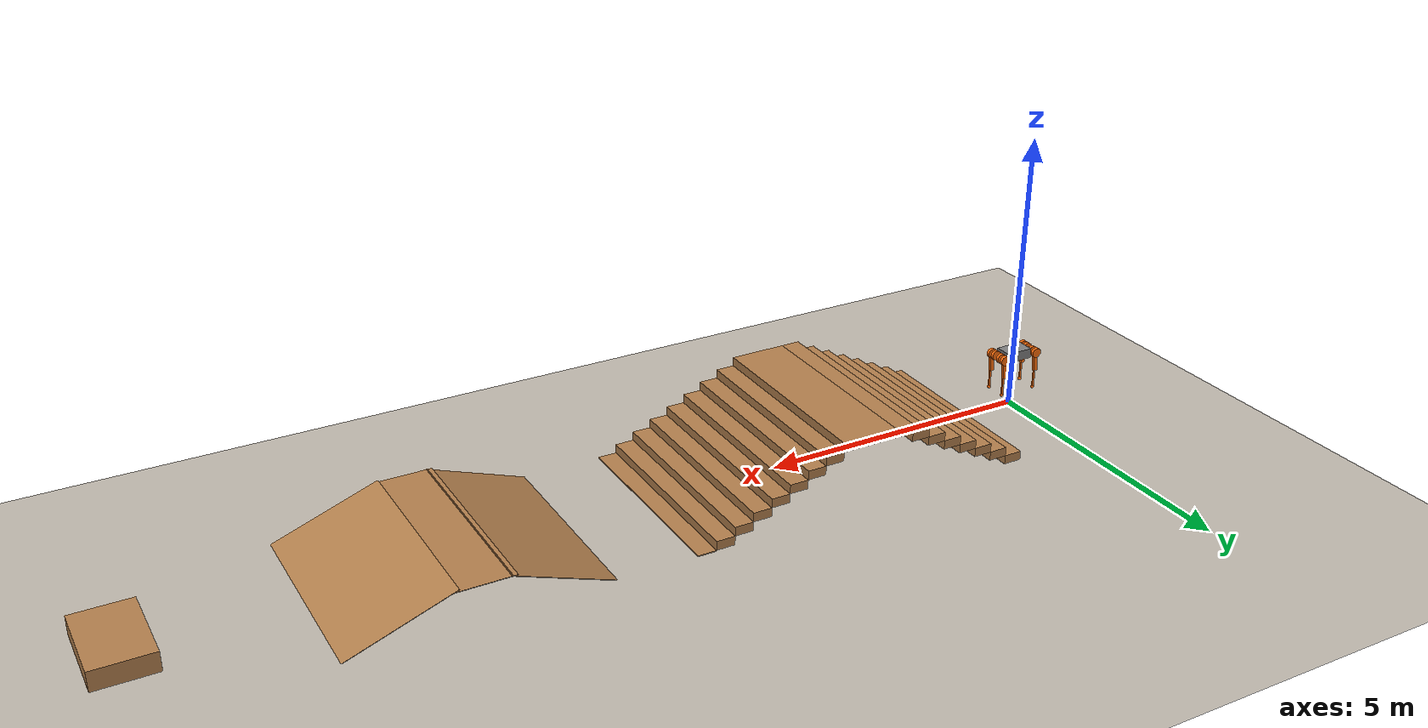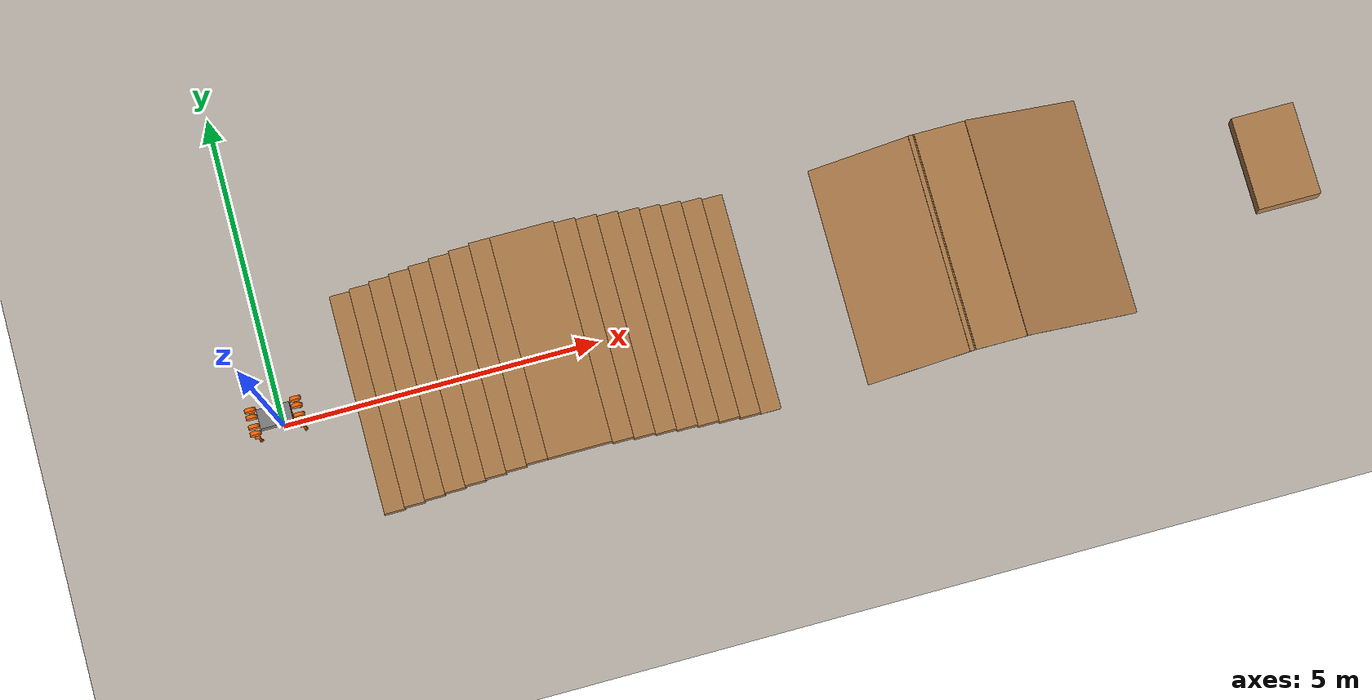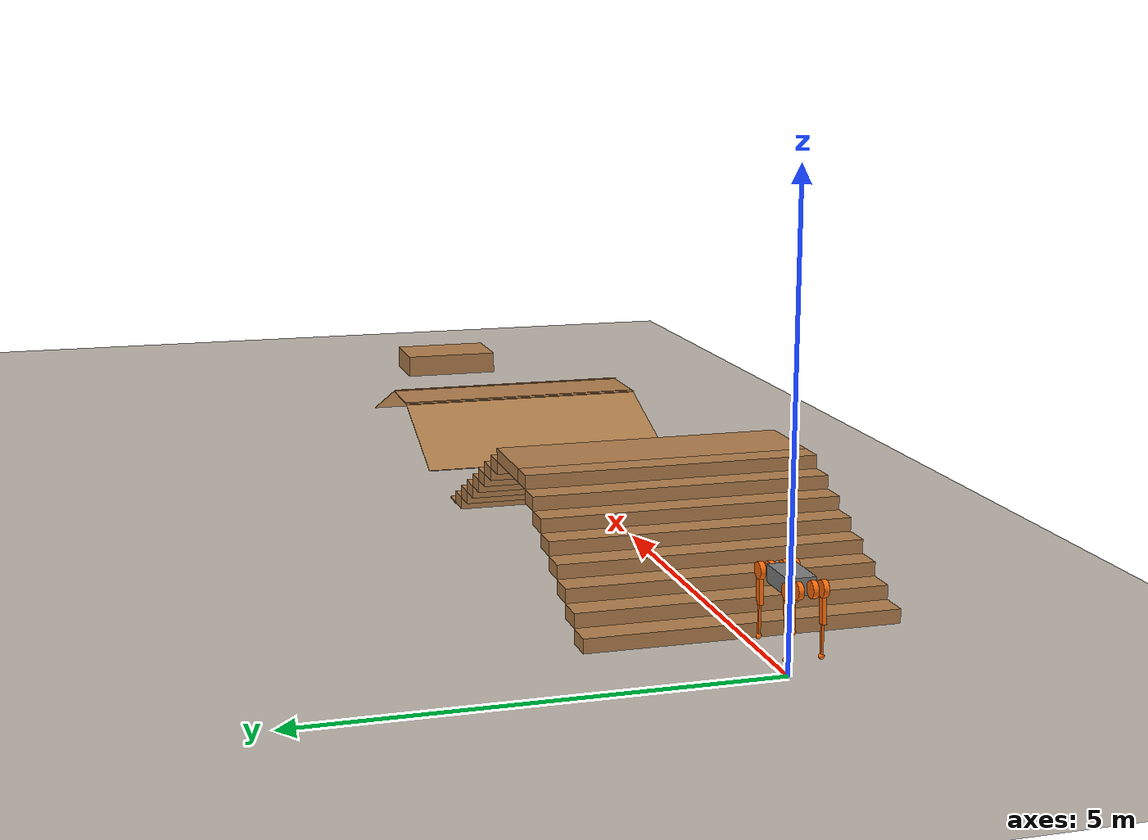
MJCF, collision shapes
<mujoco model="quad200 scene">
  <include file="quad200.xml" />

  <statistic center="1.0 0.7 1.0" extent="0.8" />

  <visual>

    <headlight diffuse="0.6 0.6 0.6" ambient="0.15 0.15 0.15" specular="0.9 0.9 0.9" />

    <rgba haze="0.0 0.0 0.0 1" />

    <global azimuth="-140" elevation="-20" />
  </visual>

  <asset>

    <texture type="skybox" builtin="flat" rgb1="1 1 1" rgb2="1 1 1" width="512" height="3072" />

    <texture name="floor_tex" type="2d" file="flooring2.png" />

    <material name="floor_mat" texture="floor_tex" texuniform="true" texrepeat="1 1" reflectance="0.2" />

    <texture type="2d" name="groundplane" builtin="checker" mark="edge" rgb1="0.2 0.3 0.4" rgb2="0.1 0.2 0.3" markrgb="0.8 0.8 0.8" width="300" height="300" />
    <material name="groundplane" texture="groundplane" texuniform="true" texrepeat="5 5" reflectance="0.2" />
  <texture name="wood_tex" type="2d" file="wood_texture.png" /><material name="wood" texture="wood_tex" texuniform="true" texrepeat="2 2" specular="0.3" shininess="0.1" reflectance="0.1" /></asset>

  <worldbody>
    <light pos="1 0 3.5" dir="0 0 -1" directional="true" />

    <geom name="floor" size="0 0 0.05" type="plane" material="floor_mat" />
  <geom pos="1.33 0.0 0.08" type="box" size="0.165 1.75 0.08" quat="1.0 0.0 0.0 0.0" material="wood" /><geom pos="1.6600000000000001 0.0 0.24" type="box" size="0.165 1.75 0.08" quat="1.0 0.0 0.0 0.0" material="wood" /><geom pos="1.99 0.0 0.4" type="box" size="0.165 1.75 0.08" quat="1.0 0.0 0.0 0.0" material="wood" /><geom pos="2.3200000000000003 0.0 0.56" type="box" size="0.165 1.75 0.08" quat="1.0 0.0 0.0 0.0" material="wood" /><geom pos="2.6500000000000004 0.0 0.7200000000000001" type="box" size="0.165 1.75 0.08" quat="1.0 0.0 0.0 0.0" material="wood" /><geom pos="2.9800000000000004 0.0 0.8800000000000001" type="box" size="0.165 1.75 0.08" quat="1.0 0.0 0.0 0.0" material="wood" /><geom pos="3.31 0.0 1.04" type="box" size="0.165 1.75 0.08" quat="1.0 0.0 0.0 0.0" material="wood" /><geom pos="3.64 0.0 1.2" type="box" size="0.165 1.75 0.08" quat="1.0 0.0 0.0 0.0" material="wood" /><geom pos="4.305 0.0 1.2" type="box" size="0.5 1.75 0.08" quat="1.0 0.0 0.0 0.0" material="wood" /><geom pos="4.970000000000001 0.0 1.04" type="box" size="0.165 1.75 0.08" quat="1.0 0.0 0.0 0.0" material="wood" /><geom pos="5.3 0.0 0.8799999999999999" type="box" size="0.165 1.75 0.08" quat="1.0 0.0 0.0 0.0" material="wood" /><geom pos="5.63 0.0 0.72" type="box" size="0.165 1.75 0.08" quat="1.0 0.0 0.0 0.0" material="wood" /><geom pos="5.96 0.0 0.5599999999999999" type="box" size="0.165 1.75 0.08" quat="1.0 0.0 0.0 0.0" material="wood" /><geom pos="6.29 0.0 0.3999999999999999" type="box" size="0.165 1.75 0.08" quat="1.0 0.0 0.0 0.0" material="wood" /><geom pos="6.62 0.0 0.24" type="box" size="0.165 1.75 0.08" quat="1.0 0.0 0.0 0.0" material="wood" /><geom pos="6.95 0.0 0.07999999999999985" type="box" size="0.165 1.75 0.08" quat="1.0 0.0 0.0 0.0" material="wood" /><geom pos="7.28 0.0 -0.08000000000000007" type="box" size="0.165 1.75 0.08" quat="1.0 0.0 0.0 0.0" material="wood" /><geom pos="9.679243225836387 0.0 0.305" type="box" size="0.8992432258363866 1.75 0.005" quat="0.984807753012208 0.0 -0.17364817766693033 0.0" material="wood" /><geom pos="10.928486451672775 0.0 0.605" type="box" size="0.5 1.75 0.005" quat="1.0 0.0 0.0 0.0" material="wood" /><geom pos="12.252729677509162 0.0 0.305" type="box" size="0.9742432258363867 1.75 0.005" quat="0.984807753012208 0.0 0.17364817766693033 0.0" material="wood" /><geom pos="15.876972903345548 0.0 0.17" type="box" size="0.5 0.75 0.17" quat="1.0 0.0 0.0 0.0" material="wood" /></worldbody>
</mujoco>

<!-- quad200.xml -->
<mujoco model="dog200">
    <compiler angle="radian" meshdir="meshes/"/>
    <asset>
        <mesh name="trunk" file="trunk.STL" />
        <mesh name="LF_HIP" file="LF_HIP.STL" />
        <mesh name="R_thigh" file="R_thigh.STL" />
        <mesh name="calf" file="calf.STL" />
        <mesh name="L_thigh" file="L_thigh.STL" />
    </asset>
    <worldbody>
        <body name="trunk" pos="0 0 1.0">
            <inertial pos="0.00789711 0.00953951 -0.0051841" quat="0.0205161 0.711371 0.0195777 0.702245" mass="27.3263" diaginertia="1.18815 1.09304 0.305078" />
            <joint name="floating_base_joint" type="free" />
            <geom type="mesh" contype="0" conaffinity="0" group="1" mesh="trunk" />
            <geom size="0.253 0.152 0.09" type="box" />
            <geom size="0.0075 0.0075 0.002" type="box" contype="0" conaffinity="0" group="1" />

            <body name="FL_hip" pos="0.35 0.075 0">
                <inertial pos="-0.011504 -0.000224 -1.3e-05" quat="0.498478 0.498792 0.501765 0.500957" mass="2.676" diaginertia="0.0113232 0.007225 0.00545482" />
                <joint name="FL_hip_joint" pos="0 0 0" axis="1 0 0" limited="true" range="-0.523599 0.523599" />
                <geom type="mesh" contype="0" conaffinity="0" group="1" rgba="1 0.423529 0.0392157 1" mesh="LF_HIP" />
                <geom size="0.0875 0.0275" quat="0.707107 0.707107 0 0" type="cylinder" rgba="1 0.423529 0.0392157 1" />
                <body name="FL_thigh" pos="0 0.10765 0">
                    <inertial pos="-0.007531 -0.02581 -0.050382" quat="0.74949 0.0608 -0.0104963 0.659134" mass="4.73942" diaginertia="0.0736307 0.0691052 0.0113391" />
                    <joint name="FL_thigh_joint" pos="0 0 0" axis="0 -1 0" limited="true" range="-1.98968 0.488692" />
                    <geom type="mesh" contype="0" conaffinity="0" group="1" rgba="1 0.423529 0.0392157 1" mesh="L_thigh" />
                    <geom size="0.175 0.0225 0.0375" pos="0 0 -0.175" quat="0.670882 0 0.741564 0" type="box" rgba="1 0.423529 0.0392157 1" />
                    <geom size="0.0875 0.0275" quat="0.707107 0.707107 0 0" type="cylinder" rgba="1 0.423529 0.0392157 1" />
                    <body name="FL_calf" pos="0 0 -0.35">
                        <inertial pos="0.0112318 7.49565e-05 -0.146471" quat="0.70682 -0.00486107 -0.00436292 0.707363" mass="0.753616" diaginertia="0.0150568 0.0148607 0.000362318" />
                        <joint name="FL_calf_joint" pos="0 0 0" axis="0 -1 0" limited="true" range="1.02974 2.72271" />
                        <geom type="mesh" contype="0" conaffinity="0" group="1" rgba="1 0.423529 0.0392157 1" mesh="calf" />
                        <geom size="0.164 0.011 0.0175" pos="0 0 -0.164" quat="0.707107 0 0.707107 0" type="box" rgba="1 0.423529 0.0392157 1" />
                        <geom size="0.02" pos="0 0 -0.328" contype="0" conaffinity="0" group="1" rgba="1 0.423529 0.0392157 1" />
                        <geom size="0.03" pos="0 0 -0.328" rgba="1 0.423529 0.0392157 1" />
                    </body>
                </body>
            </body>
            <body name="FR_hip" pos="0.35 -0.075 0">
                <inertial pos="-0.011504 0.000224 1.3e-05" quat="0.501765 0.500957 0.498478 0.498792" mass="2.676" diaginertia="0.0113232 0.007225 0.00545482" />
                <joint name="FR_hip_joint" pos="0 0 0" axis="1 0 0" limited="true" range="-0.523599 0.523599" />
                <geom quat="0 1 0 0" type="mesh" contype="0" conaffinity="0" group="1" rgba="1 0.423529 0.0392157 1" mesh="LF_HIP" />
                <geom size="0.0875 0.0275" quat="0.707107 0.707107 0 0" type="cylinder" rgba="1 0.423529 0.0392157 1" />
                <body name="FR_thigh" pos="0 -0.10765 0">
                    <inertial pos="-0.007538 0.024625 -0.050384" quat="0.992524 -0.11444 0.0295516 -0.0304463" mass="4.73942" diaginertia="0.0858268 0.0755596 0.0261026" />
                    <joint name="FR_thigh_joint" pos="0 0 0" axis="0 -1 0" limited="true" range="-1.98968 0.488692" />
                    <geom type="mesh" contype="0" conaffinity="0" group="1" rgba="1 0.423529 0.0392157 1" mesh="R_thigh" />
                    <geom size="0.175 0.0225 0.0375" pos="0 0 -0.175" quat="0.670882 0 0.741564 0" type="box" rgba="1 0.423529 0.0392157 1" />
                    <geom size="0.0875 0.0275" quat="0.707107 0.707107 0 0" type="cylinder" rgba="1 0.423529 0.0392157 1" />
                    <body name="FR_calf" pos="0 0 -0.35">
                        <inertial pos="0.0112318 7.49565e-05 -0.146471" quat="0.70682 -0.00486107 -0.00436292 0.707363" mass="0.753616" diaginertia="0.0150568 0.0148607 0.000362318" />
                        <joint name="FR_calf_joint" pos="0 0 0" axis="0 -1 0" limited="true" range="1.02974 2.72271" />
                        <geom type="mesh" contype="0" conaffinity="0" group="1" rgba="1 0.423529 0.0392157 1" mesh="calf" />
                        <geom size="0.164 0.011 0.0175" pos="0 0 -0.164" quat="0.707107 0 0.707107 0" type="box" rgba="1 0.423529 0.0392157 1" />
                        <geom size="0.02" pos="0 0 -0.328" contype="0" conaffinity="0" group="1" rgba="1 0.423529 0.0392157 1" />
                        <geom size="0.03" pos="0 0 -0.328" rgba="1 0.423529 0.0392157 1" />
                    </body>
                </body>
            </body>

            <body name="RL_hip" pos="-0.35 0.075 0">
                <inertial pos="0.011504 -0.000224 1.3e-05" quat="0.500957 0.501765 0.498792 0.498478" mass="2.676" diaginertia="0.0113232 0.007225 0.00545482" />
                <joint name="RL_hip_joint" pos="0 0 0" axis="1 0 0" limited="true" range="-0.523599 0.523599" />
                <geom quat="0 0 1 0" type="mesh" contype="0" conaffinity="0" group="1" rgba="1 0.423529 0.0392157 1" mesh="LF_HIP" />
                <geom size="0.0875 0.0275" quat="0.707107 0.707107 0 0" type="cylinder" rgba="1 0.423529 0.0392157 1" />
                <body name="RL_thigh" pos="0 0.10765 0">
                    <inertial pos="-0.007531 -0.02581 -0.050382" quat="0.74949 0.0608 -0.0104963 0.659134" mass="4.73942" diaginertia="0.0736307 0.0691052 0.0113391" />
                    <joint name="RL_thigh_joint" pos="0 0 0" axis="0 -1 0" limited="true" range="-1.98968 0.488692" />
                    <geom type="mesh" contype="0" conaffinity="0" group="1" rgba="1 0.423529 0.0392157 1" mesh="L_thigh" />
                    <geom size="0.175 0.0225 0.0375" pos="0 0 -0.175" quat="0.670882 0 0.741564 0" type="box" rgba="1 0.423529 0.0392157 1" />
                    <geom size="0.0875 0.0275" quat="0.707107 0.707107 0 0" type="cylinder" rgba="1 0.423529 0.0392157 1" />
                    <body name="RL_calf" pos="0 0 -0.35">
                        <inertial pos="0.0112318 7.49565e-05 -0.146471" quat="0.70682 -0.00486107 -0.00436292 0.707363" mass="0.753616" diaginertia="0.0150568 0.0148607 0.000362318" />
                        <joint name="RL_calf_joint" pos="0 0 0" axis="0 -1 0" limited="true" range="1.02974 2.72271" />
                        <geom type="mesh" contype="0" conaffinity="0" group="1" rgba="1 0.423529 0.0392157 1" mesh="calf" />
                        <geom size="0.164 0.011 0.0175" pos="0 0 -0.164" quat="0.707107 0 0.707107 0" type="box" rgba="1 0.423529 0.0392157 1" />
                        <geom size="0.02" pos="0 0 -0.328" contype="0" conaffinity="0" group="1" rgba="1 0.423529 0.0392157 1" />
                        <geom size="0.03" pos="0 0 -0.328" rgba="1 0.423529 0.0392157 1" />
                    </body>
                </body>
            </body>
            <body name="RR_hip" pos="-0.35 -0.075 0">
                <inertial pos="0.011504 0.000224 -1.3e-05" quat="0.498792 0.498478 0.500957 0.501765" mass="2.676" diaginertia="0.0113232 0.007225 0.00545482" />
                <joint name="RR_hip_joint" pos="0 0 0" axis="1 0 0" limited="true" range="-0.523599 0.523599" />
                <geom quat="0 0 0 -1" type="mesh" contype="0" conaffinity="0" group="1" rgba="1 0.423529 0.0392157 1" mesh="LF_HIP" />
                <geom size="0.0875 0.0275" quat="0.707107 0.707107 0 0" type="cylinder" rgba="1 0.423529 0.0392157 1" />
                <body name="RR_thigh" pos="0 -0.10765 0">
                    <inertial pos="-0.007538 0.024625 -0.050384" quat="0.992524 -0.11444 0.0295516 -0.0304463" mass="4.73942" diaginertia="0.0858268 0.0755596 0.0261026" />
                    <joint name="RR_thigh_joint" pos="0 0 0" axis="0 -1 0" limited="true" range="-1.98968 0.488692" />
                    <geom type="mesh" contype="0" conaffinity="0" group="1" rgba="1 0.423529 0.0392157 1" mesh="R_thigh" />
                    <geom size="0.175 0.0225 0.0375" pos="0 0 -0.175" quat="0.670882 0 0.741564 0" type="box" rgba="1 0.423529 0.0392157 1" />
                    <geom size="0.0875 0.0275" quat="0.707107 0.707107 0 0" type="cylinder" rgba="1 0.423529 0.0392157 1" />
                    <body name="RR_calf" pos="0 0 -0.35">
                        <inertial pos="0.0112318 7.49565e-05 -0.146471" quat="0.70682 -0.00486107 -0.00436292 0.707363" mass="0.753616" diaginertia="0.0150568 0.0148607 0.000362318" />
                        <joint name="RR_calf_joint" pos="0 0 0" axis="0 -1 0" limited="true" range="1.02974 2.72271" />
                        <geom type="mesh" contype="0" conaffinity="0" group="1" rgba="1 0.423529 0.0392157 1" mesh="calf" />
                        <geom size="0.164 0.011 0.0175" pos="0 0 -0.164" quat="0.707107 0 0.707107 0" type="box" rgba="1 0.423529 0.0392157 1" />
                        <geom size="0.02" pos="0 0 -0.328" contype="0" conaffinity="0" group="1" rgba="1 0.423529 0.0392157 1" />
                        <geom size="0.03" pos="0 0 -0.328" rgba="1 0.423529 0.0392157 1" />
                    </body>
                </body>
            </body>
        </body>
    </worldbody>
<actuator>
    <motor name="FL_hip" joint="FL_hip_joint" />
    <motor name="FL_thigh" joint="FL_thigh_joint" />
    <motor name="FL_calf" joint="FL_calf_joint" />
    <motor name="FR_hip" joint="FR_hip_joint" />
    <motor name="FR_thigh" joint="FR_thigh_joint" />
    <motor name="FR_calf" joint="FR_calf_joint" />
    <motor name="RL_hip" joint="RL_hip_joint" />
    <motor name="RL_thigh" joint="RL_thigh_joint" />
    <motor name="RL_calf" joint="RL_calf_joint" />
    <motor name="RR_hip" joint="RR_hip_joint" />
    <motor name="RR_thigh" joint="RR_thigh_joint" />
    <motor name="RR_calf" joint="RR_calf_joint" />
</actuator>
</mujoco>
